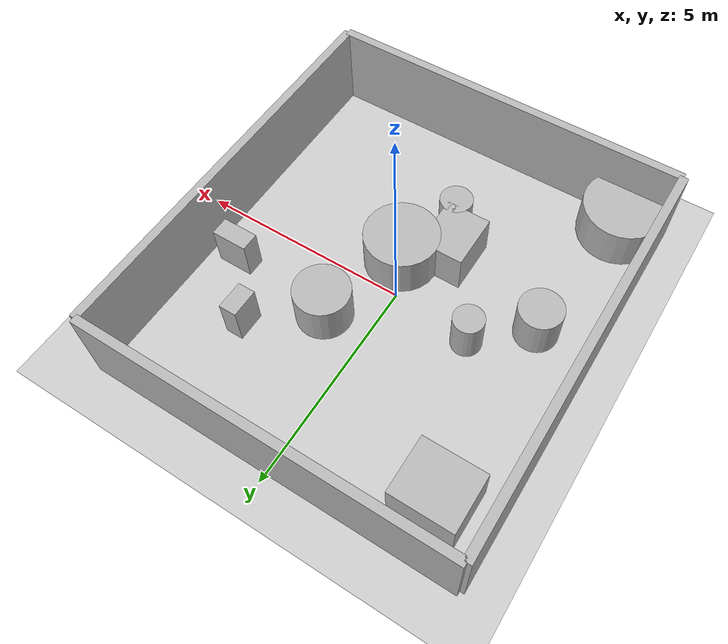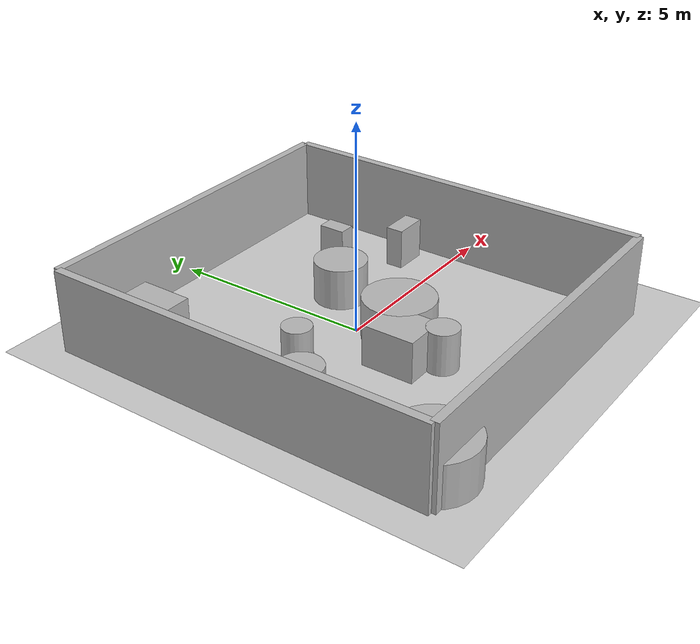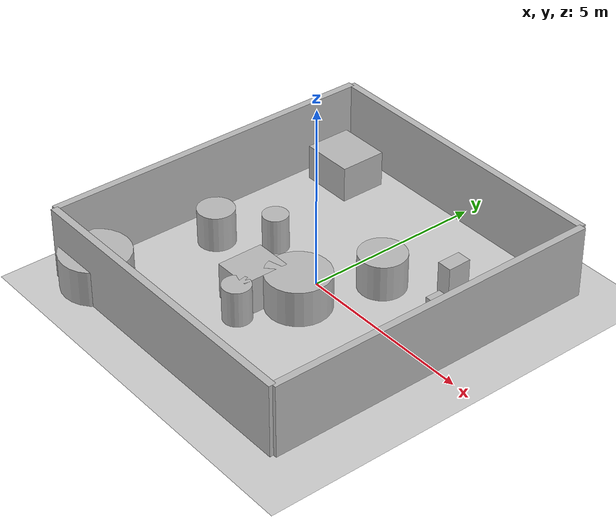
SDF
<?xml version="1.0"?>
<sdf version="1.6">
  <world name="env_16">

    <include><uri>model://ground_plane</uri></include>
    <include><uri>model://sun</uri></include>

    <!-- WALLS -->
    <model name="wall_north"><static>true</static><pose>0 4.7017658308166155 1 0 0 0</pose>
      <link name="link"><collision name="collision">
        <geometry><box><size>8.594741730751 0.2 2</size></box></geometry>
      </collision><visual name="visual">
        <geometry><box><size>8.594741730751 0.2 2</size></box></geometry>
      </visual></link>
    </model>

    <model name="wall_south"><static>true</static><pose>0 -4.7017658308166155 1 0 0 0</pose>
      <link name="link"><collision name="collision">
        <geometry><box><size>8.594741730751 0.2 2</size></box></geometry>
      </collision><visual name="visual">
        <geometry><box><size>8.594741730751 0.2 2</size></box></geometry>
      </visual></link>
    </model>

    <model name="wall_east"><static>true</static><pose>4.2973708653755 0 1 0 0 1.57</pose>
      <link name="link"><collision name="collision">
        <geometry><box><size>9.403531661633231 0.2 2</size></box></geometry>
      </collision><visual name="visual">
        <geometry><box><size>9.403531661633231 0.2 2</size></box></geometry>
      </visual></link>
    </model>

    <model name="wall_west"><static>true</static><pose>-4.2973708653755 0 1 0 0 1.57</pose>
      <link name="link"><collision name="collision">
        <geometry><box><size>9.403531661633231 0.2 2</size></box></geometry>
      </collision><visual name="visual">
        <geometry><box><size>9.403531661633231 0.2 2</size></box></geometry>
      </visual></link>
    </model>

    <!-- SENSOR -->

    <model name="lidar_sensor">
      <static>true</static>
      <pose>-3.506377484498544 -3.143833754723534 0.4 0 0 0</pose>
      <link name="link">
        <sensor name="lidar" type="ray">
          <pose>0 0 0 0 0 0</pose>
          <visualize>true</visualize>
          <always_on>true</always_on>
          <update_rate>10</update_rate>
          <ray>
            <scan><horizontal>
              <samples>240</samples>
              <resolution>1</resolution>
              <min_angle>-3.14159</min_angle>
              <max_angle>3.14159</max_angle>
            </horizontal></scan>
            <range><min>0.15</min><max>20.0</max><resolution>0.01</resolution></range>
          </ray>
          <plugin name="lidar_plugin" filename="liblidar_plugin.so"/>
        </sensor>
      </link>
    </model>

    <!-- OBSTACLES -->

    <model name="obstacle_0">
      <static>true</static>
      <pose>0.40250999595567016 -0.8855448891811655 0.5 0 0 0</pose>
      <link name="link">
        <collision name="collision">
          <geometry><cylinder><radius>0.86</radius><length>1.0</length></cylinder></geometry>
        </collision>
        <visual name="visual">
          <geometry><cylinder><radius>0.86</radius><length>1.0</length></cylinder></geometry>
        </visual>
      </link>
    </model>

    <model name="obstacle_1">
      <static>true</static>
      <pose>-0.543268469612729 -1.5437924950366813 0.5 0 0 0</pose>
      <link name="link">
        <collision name="collision">
          <geometry><box><size>1.05 1.28 1.0</size></box></geometry>
        </collision>
        <visual name="visual">
          <geometry><box><size>1.05 1.28 1.0</size></box></geometry>
        </visual>
      </link>
    </model>

    <model name="obstacle_2">
      <static>true</static>
      <pose>1.0715484386991712 1.208503858099041 0.5 0 0 0</pose>
      <link name="link">
        <collision name="collision">
          <geometry><cylinder><radius>0.64</radius><length>1.0</length></cylinder></geometry>
        </collision>
        <visual name="visual">
          <geometry><cylinder><radius>0.64</radius><length>1.0</length></cylinder></geometry>
        </visual>
      </link>
    </model>

    <model name="obstacle_3">
      <static>true</static>
      <pose>3.4909362346020956 1.0397885322683882 0.5 0 0 0</pose>
      <link name="link">
        <collision name="collision">
          <geometry><box><size>0.84 0.43 1.0</size></box></geometry>
        </collision>
        <visual name="visual">
          <geometry><box><size>0.84 0.43 1.0</size></box></geometry>
        </visual>
      </link>
    </model>

    <model name="obstacle_4">
      <static>true</static>
      <pose>-3.4040969316726013 -4.197139276362088 0.5 0 0 0</pose>
      <link name="link">
        <collision name="collision">
          <geometry><cylinder><radius>0.94</radius><length>1.0</length></cylinder></geometry>
        </collision>
        <visual name="visual">
          <geometry><cylinder><radius>0.94</radius><length>1.0</length></cylinder></geometry>
        </visual>
      </link>
    </model>

    <model name="obstacle_5">
      <static>true</static>
      <pose>-3.090193973159089 3.500361120556236 0.5 0 0 0</pose>
      <link name="link">
        <collision name="collision">
          <geometry><box><size>1.46 1.29 1.0</size></box></geometry>
        </collision>
        <visual name="visual">
          <geometry><box><size>1.46 1.29 1.0</size></box></geometry>
        </visual>
      </link>
    </model>

    <model name="obstacle_6">
      <static>true</static>
      <pose>-1.8816208084639336 0.20005174449234442 0.5 0 0 0</pose>
      <link name="link">
        <collision name="collision">
          <geometry><cylinder><radius>0.35</radius><length>1.0</length></cylinder></geometry>
        </collision>
        <visual name="visual">
          <geometry><cylinder><radius>0.35</radius><length>1.0</length></cylinder></geometry>
        </visual>
      </link>
    </model>

    <model name="obstacle_7">
      <static>true</static>
      <pose>-3.0336270063306197 -0.8006578259669825 0.5 0 0 0</pose>
      <link name="link">
        <collision name="collision">
          <geometry><cylinder><radius>0.5</radius><length>1.0</length></cylinder></geometry>
        </collision>
        <visual name="visual">
          <geometry><cylinder><radius>0.5</radius><length>1.0</length></cylinder></geometry>
        </visual>
      </link>
    </model>

    <model name="obstacle_8">
      <static>true</static>
      <pose>2.422611043396695 2.3261638399389337 0.5 0 0 0</pose>
      <link name="link">
        <collision name="collision">
          <geometry><box><size>0.41 0.66 1.0</size></box></geometry>
        </collision>
        <visual name="visual">
          <geometry><box><size>0.41 0.66 1.0</size></box></geometry>
        </visual>
      </link>
    </model>

    <model name="obstacle_9">
      <static>true</static>
      <pose>-0.13623100269567567 -2.3443244726843657 0.5 0 0 0</pose>
      <link name="link">
        <collision name="collision">
          <geometry><cylinder><radius>0.38</radius><length>1.0</length></cylinder></geometry>
        </collision>
        <visual name="visual">
          <geometry><cylinder><radius>0.38</radius><length>1.0</length></cylinder></geometry>
        </visual>
      </link>
    </model>

  </world>
</sdf>
